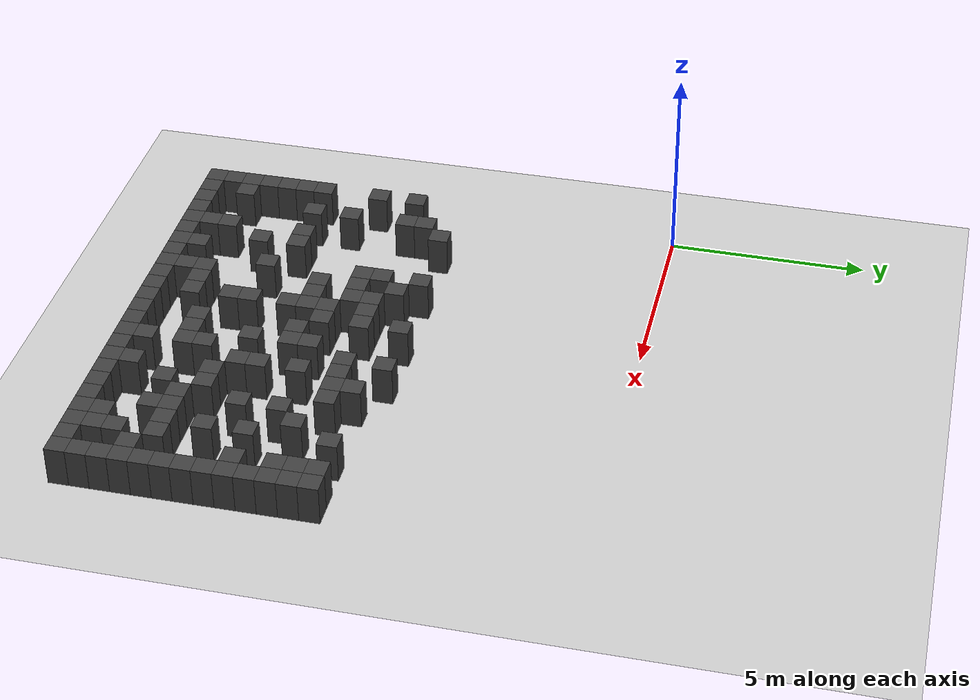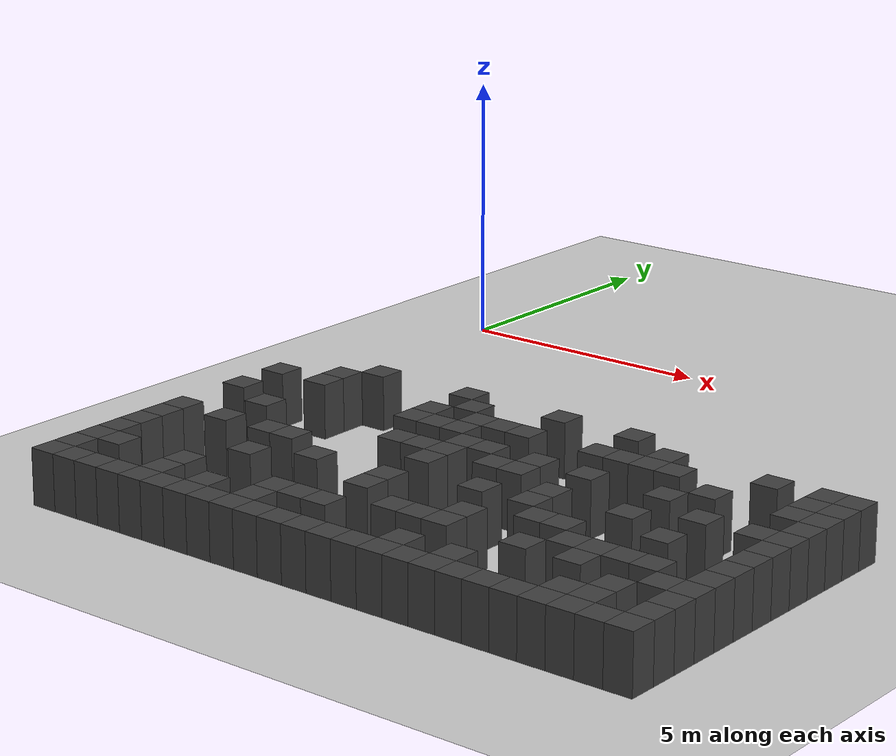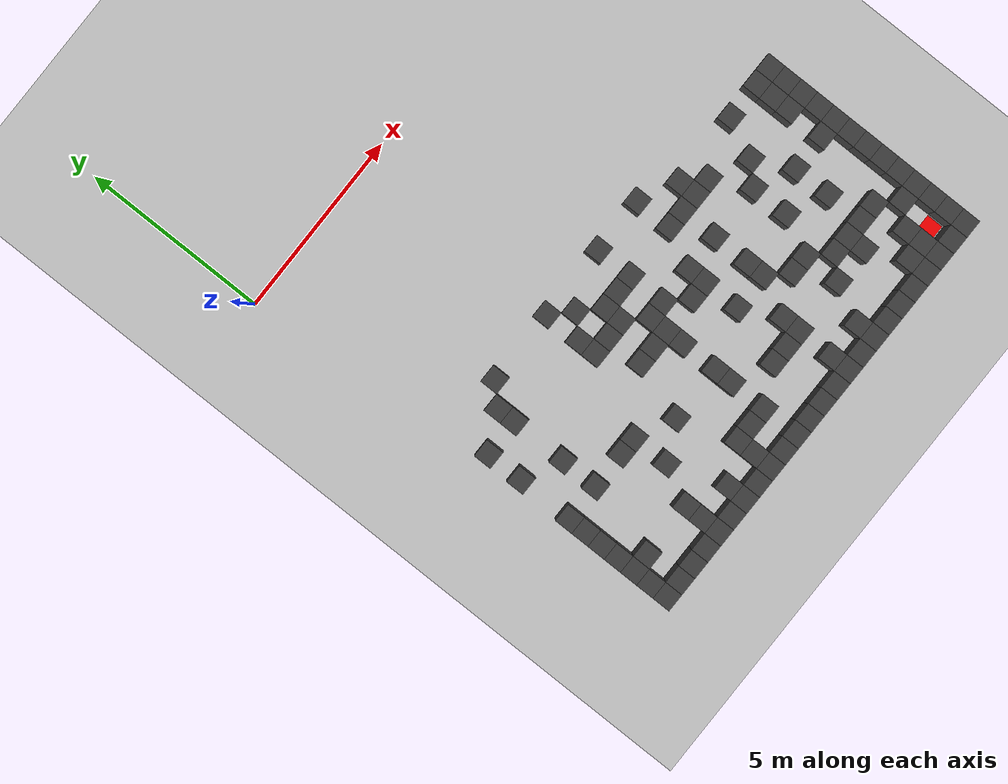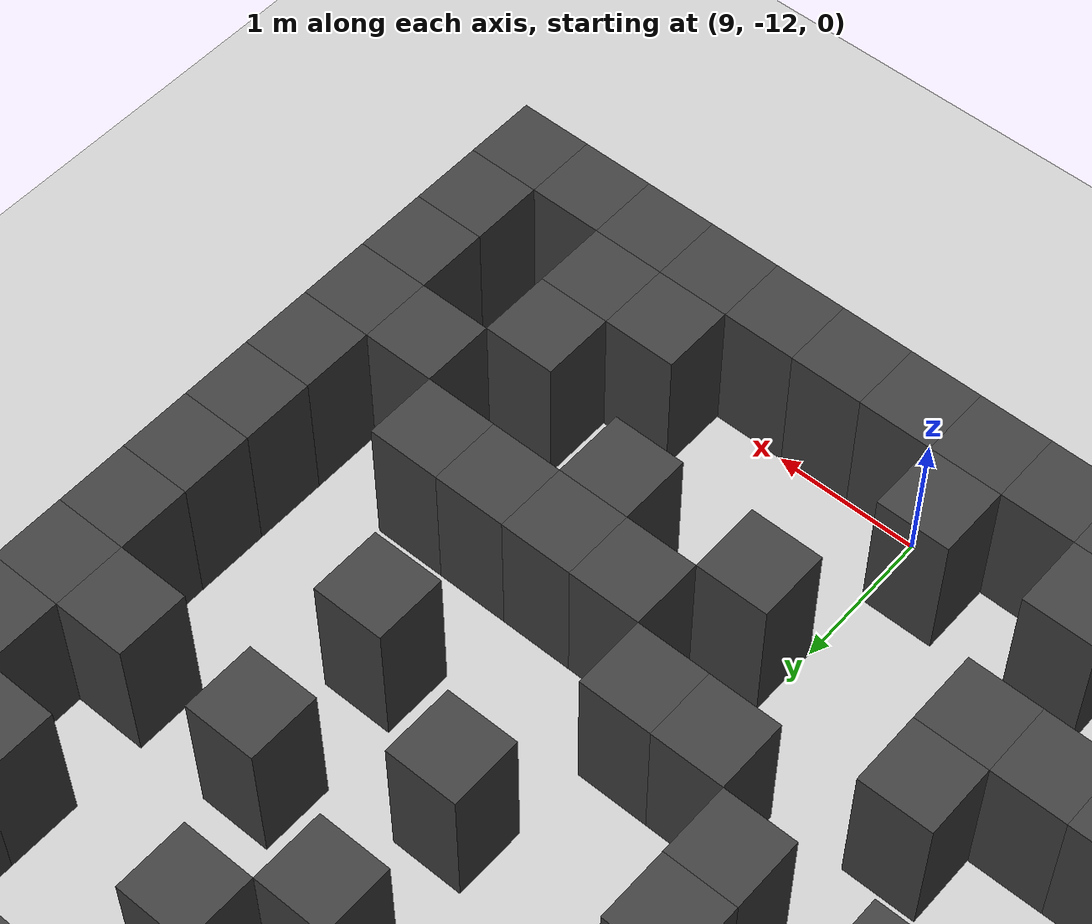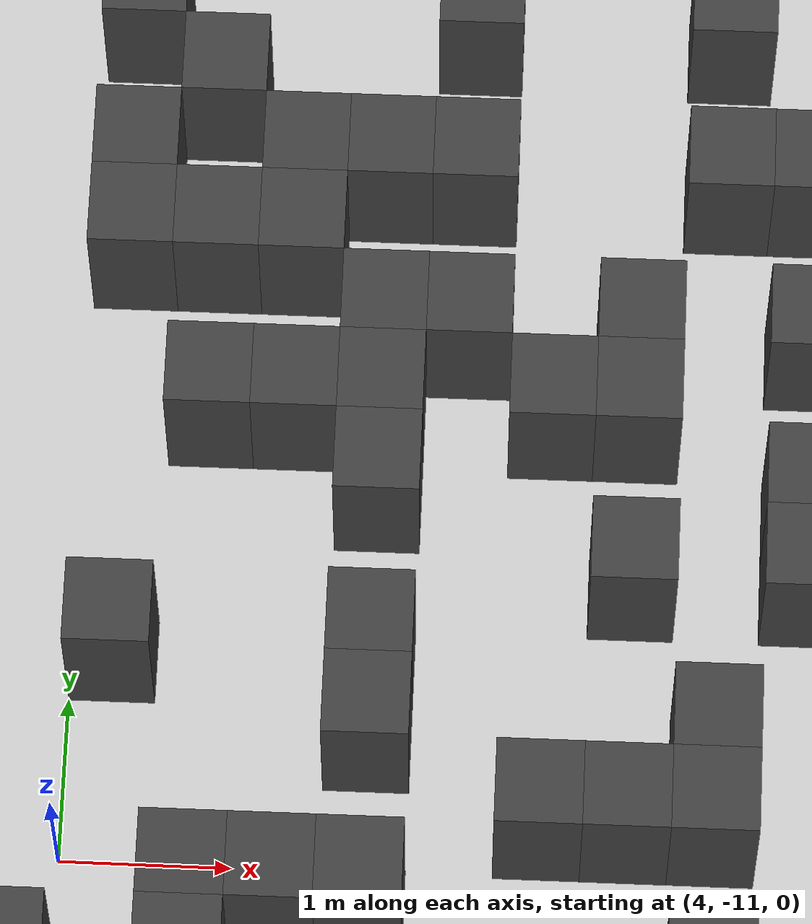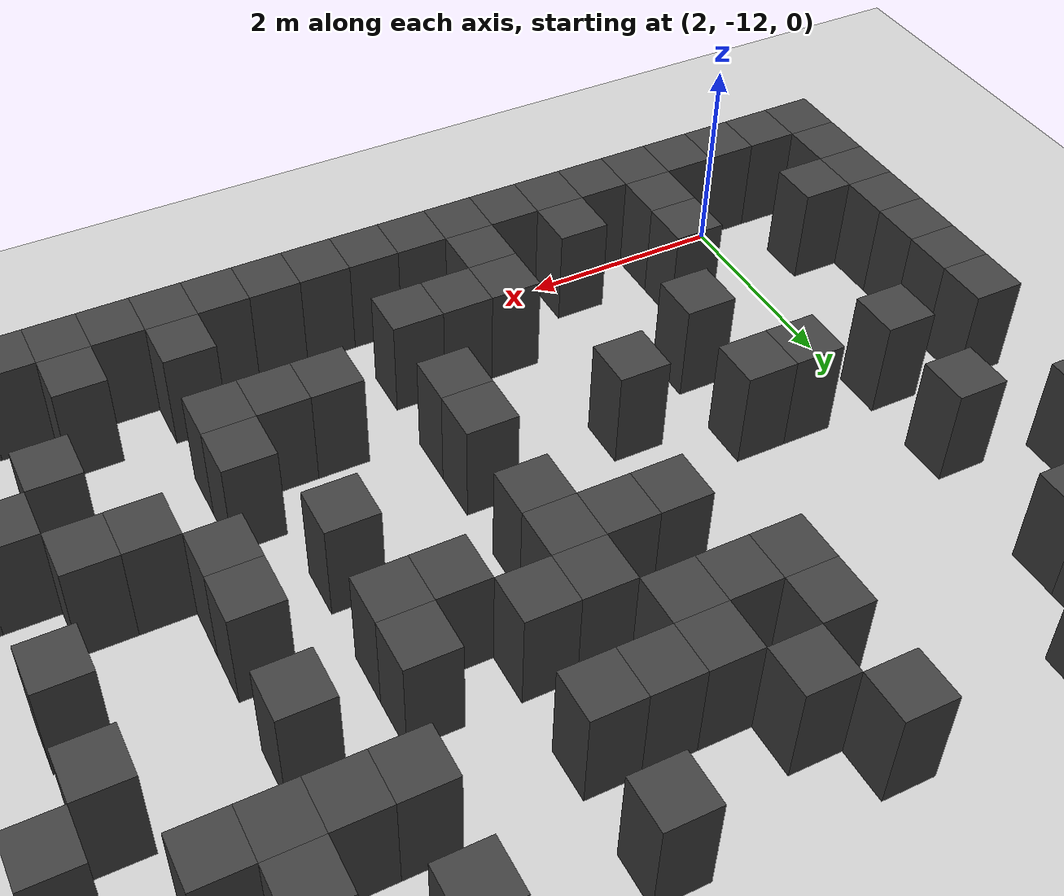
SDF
<sdf version="1.7">
 <world name="map_4818">
  <model name="ground_plane">
   <static>true</static>
   <link name="link">
    <collision name="collision">
     <geometry><plane><normal>0 0 1</normal><size>200 200</size></plane></geometry>
    </collision>
    <visual name="visual">
     <geometry><plane><normal>0 0 1</normal><size>200 200</size></plane></geometry>
     <material><ambient>0.8 0.8 0.8 1</ambient><diffuse>0.8 0.8 0.8 1</diffuse></material>
    </visual>
   </link>
  </model>
  <model name="maze_environment">
   <static>true</static>
   <link name="wall_503">
    <pose>2.250 -5.750 0.500 0 0 0</pose>
    <collision name="col"><geometry><box><size>0.5 0.5 1.0</size></box></geometry></collision>
    <visual name="vis">
     <geometry><box><size>0.5 0.5 1.0</size></box></geometry>
     <material><ambient>0.15 0.15 0.15 1</ambient><diffuse>0.25 0.25 0.25 1</diffuse></material>
    </visual>
   </link>
   <link name="wall_504">
    <pose>4.250 -5.750 0.500 0 0 0</pose>
    <collision name="col"><geometry><box><size>0.5 0.5 1.0</size></box></geometry></collision>
    <visual name="vis">
     <geometry><box><size>0.5 0.5 1.0</size></box></geometry>
     <material><ambient>0.15 0.15 0.15 1</ambient><diffuse>0.25 0.25 0.25 1</diffuse></material>
    </visual>
   </link>
   <link name="wall_505">
    <pose>6.250 -5.750 0.500 0 0 0</pose>
    <collision name="col"><geometry><box><size>0.5 0.5 1.0</size></box></geometry></collision>
    <visual name="vis">
     <geometry><box><size>0.5 0.5 1.0</size></box></geometry>
     <material><ambient>0.15 0.15 0.15 1</ambient><diffuse>0.25 0.25 0.25 1</diffuse></material>
    </visual>
   </link>
   <link name="wall_506">
    <pose>7.750 -5.750 0.500 0 0 0</pose>
    <collision name="col"><geometry><box><size>0.5 0.5 1.0</size></box></geometry></collision>
    <visual name="vis">
     <geometry><box><size>0.5 0.5 1.0</size></box></geometry>
     <material><ambient>0.15 0.15 0.15 1</ambient><diffuse>0.25 0.25 0.25 1</diffuse></material>
    </visual>
   </link>
   <link name="wall_514">
    <pose>1.750 -6.250 0.500 0 0 0</pose>
    <collision name="col"><geometry><box><size>0.5 0.5 1.0</size></box></geometry></collision>
    <visual name="vis">
     <geometry><box><size>0.5 0.5 1.0</size></box></geometry>
     <material><ambient>0.15 0.15 0.15 1</ambient><diffuse>0.25 0.25 0.25 1</diffuse></material>
    </visual>
   </link>
   <link name="wall_515">
    <pose>4.750 -6.250 0.500 0 0 0</pose>
    <collision name="col"><geometry><box><size>0.5 0.5 1.0</size></box></geometry></collision>
    <visual name="vis">
     <geometry><box><size>0.5 0.5 1.0</size></box></geometry>
     <material><ambient>0.15 0.15 0.15 1</ambient><diffuse>0.25 0.25 0.25 1</diffuse></material>
    </visual>
   </link>
   <link name="wall_516">
    <pose>8.750 -6.250 0.500 0 0 0</pose>
    <collision name="col"><geometry><box><size>0.5 0.5 1.0</size></box></geometry></collision>
    <visual name="vis">
     <geometry><box><size>0.5 0.5 1.0</size></box></geometry>
     <material><ambient>0.15 0.15 0.15 1</ambient><diffuse>0.25 0.25 0.25 1</diffuse></material>
    </visual>
   </link>
   <link name="wall_517">
    <pose>10.750 -6.250 0.500 0 0 0</pose>
    <collision name="col"><geometry><box><size>0.5 0.5 1.0</size></box></geometry></collision>
    <visual name="vis">
     <geometry><box><size>0.5 0.5 1.0</size></box></geometry>
     <material><ambient>0.15 0.15 0.15 1</ambient><diffuse>0.25 0.25 0.25 1</diffuse></material>
    </visual>
   </link>
   <link name="wall_518">
    <pose>11.750 -6.250 0.500 0 0 0</pose>
    <collision name="col"><geometry><box><size>0.5 0.5 1.0</size></box></geometry></collision>
    <visual name="vis">
     <geometry><box><size>0.5 0.5 1.0</size></box></geometry>
     <material><ambient>0.15 0.15 0.15 1</ambient><diffuse>0.25 0.25 0.25 1</diffuse></material>
    </visual>
   </link>
   <link name="wall_519">
    <pose>12.250 -6.250 0.500 0 0 0</pose>
    <collision name="col"><geometry><box><size>0.5 0.5 1.0</size></box></geometry></collision>
    <visual name="vis">
     <geometry><box><size>0.5 0.5 1.0</size></box></geometry>
     <material><ambient>0.15 0.15 0.15 1</ambient><diffuse>0.25 0.25 0.25 1</diffuse></material>
    </visual>
   </link>
   <link name="wall_526">
    <pose>0.750 -6.750 0.500 0 0 0</pose>
    <collision name="col"><geometry><box><size>0.5 0.5 1.0</size></box></geometry></collision>
    <visual name="vis">
     <geometry><box><size>0.5 0.5 1.0</size></box></geometry>
     <material><ambient>0.15 0.15 0.15 1</ambient><diffuse>0.25 0.25 0.25 1</diffuse></material>
    </visual>
   </link>
   <link name="wall_527">
    <pose>1.750 -6.750 0.500 0 0 0</pose>
    <collision name="col"><geometry><box><size>0.5 0.5 1.0</size></box></geometry></collision>
    <visual name="vis">
     <geometry><box><size>0.5 0.5 1.0</size></box></geometry>
     <material><ambient>0.15 0.15 0.15 1</ambient><diffuse>0.25 0.25 0.25 1</diffuse></material>
    </visual>
   </link>
   <link name="wall_528">
    <pose>4.250 -6.750 0.500 0 0 0</pose>
    <collision name="col"><geometry><box><size>0.5 0.5 1.0</size></box></geometry></collision>
    <visual name="vis">
     <geometry><box><size>0.5 0.5 1.0</size></box></geometry>
     <material><ambient>0.15 0.15 0.15 1</ambient><diffuse>0.25 0.25 0.25 1</diffuse></material>
    </visual>
   </link>
   <link name="wall_529">
    <pose>5.250 -6.750 0.500 0 0 0</pose>
    <collision name="col"><geometry><box><size>0.5 0.5 1.0</size></box></geometry></collision>
    <visual name="vis">
     <geometry><box><size>0.5 0.5 1.0</size></box></geometry>
     <material><ambient>0.15 0.15 0.15 1</ambient><diffuse>0.25 0.25 0.25 1</diffuse></material>
    </visual>
   </link>
   <link name="wall_530">
    <pose>5.750 -6.750 0.500 0 0 0</pose>
    <collision name="col"><geometry><box><size>0.5 0.5 1.0</size></box></geometry></collision>
    <visual name="vis">
     <geometry><box><size>0.5 0.5 1.0</size></box></geometry>
     <material><ambient>0.15 0.15 0.15 1</ambient><diffuse>0.25 0.25 0.25 1</diffuse></material>
    </visual>
   </link>
   <link name="wall_531">
    <pose>6.250 -6.750 0.500 0 0 0</pose>
    <collision name="col"><geometry><box><size>0.5 0.5 1.0</size></box></geometry></collision>
    <visual name="vis">
     <geometry><box><size>0.5 0.5 1.0</size></box></geometry>
     <material><ambient>0.15 0.15 0.15 1</ambient><diffuse>0.25 0.25 0.25 1</diffuse></material>
    </visual>
   </link>
   <link name="wall_532">
    <pose>7.750 -6.750 0.500 0 0 0</pose>
    <collision name="col"><geometry><box><size>0.5 0.5 1.0</size></box></geometry></collision>
    <visual name="vis">
     <geometry><box><size>0.5 0.5 1.0</size></box></geometry>
     <material><ambient>0.15 0.15 0.15 1</ambient><diffuse>0.25 0.25 0.25 1</diffuse></material>
    </visual>
   </link>
   <link name="wall_533">
    <pose>8.250 -6.750 0.500 0 0 0</pose>
    <collision name="col"><geometry><box><size>0.5 0.5 1.0</size></box></geometry></collision>
    <visual name="vis">
     <geometry><box><size>0.5 0.5 1.0</size></box></geometry>
     <material><ambient>0.15 0.15 0.15 1</ambient><diffuse>0.25 0.25 0.25 1</diffuse></material>
    </visual>
   </link>
   <link name="wall_534">
    <pose>8.750 -6.750 0.500 0 0 0</pose>
    <collision name="col"><geometry><box><size>0.5 0.5 1.0</size></box></geometry></collision>
    <visual name="vis">
     <geometry><box><size>0.5 0.5 1.0</size></box></geometry>
     <material><ambient>0.15 0.15 0.15 1</ambient><diffuse>0.25 0.25 0.25 1</diffuse></material>
    </visual>
   </link>
   <link name="wall_535">
    <pose>9.250 -6.750 0.500 0 0 0</pose>
    <collision name="col"><geometry><box><size>0.5 0.5 1.0</size></box></geometry></collision>
    <visual name="vis">
     <geometry><box><size>0.5 0.5 1.0</size></box></geometry>
     <material><ambient>0.15 0.15 0.15 1</ambient><diffuse>0.25 0.25 0.25 1</diffuse></material>
    </visual>
   </link>
   <link name="wall_536">
    <pose>11.750 -6.750 0.500 0 0 0</pose>
    <collision name="col"><geometry><box><size>0.5 0.5 1.0</size></box></geometry></collision>
    <visual name="vis">
     <geometry><box><size>0.5 0.5 1.0</size></box></geometry>
     <material><ambient>0.15 0.15 0.15 1</ambient><diffuse>0.25 0.25 0.25 1</diffuse></material>
    </visual>
   </link>
   <link name="wall_537">
    <pose>12.250 -6.750 0.500 0 0 0</pose>
    <collision name="col"><geometry><box><size>0.5 0.5 1.0</size></box></geometry></collision>
    <visual name="vis">
     <geometry><box><size>0.5 0.5 1.0</size></box></geometry>
     <material><ambient>0.15 0.15 0.15 1</ambient><diffuse>0.25 0.25 0.25 1</diffuse></material>
    </visual>
   </link>
   <link name="wall_542">
    <pose>4.250 -7.250 0.500 0 0 0</pose>
    <collision name="col"><geometry><box><size>0.5 0.5 1.0</size></box></geometry></collision>
    <visual name="vis">
     <geometry><box><size>0.5 0.5 1.0</size></box></geometry>
     <material><ambient>0.15 0.15 0.15 1</ambient><diffuse>0.25 0.25 0.25 1</diffuse></material>
    </visual>
   </link>
   <link name="wall_543">
    <pose>4.750 -7.250 0.500 0 0 0</pose>
    <collision name="col"><geometry><box><size>0.5 0.5 1.0</size></box></geometry></collision>
    <visual name="vis">
     <geometry><box><size>0.5 0.5 1.0</size></box></geometry>
     <material><ambient>0.15 0.15 0.15 1</ambient><diffuse>0.25 0.25 0.25 1</diffuse></material>
    </visual>
   </link>
   <link name="wall_544">
    <pose>5.250 -7.250 0.500 0 0 0</pose>
    <collision name="col"><geometry><box><size>0.5 0.5 1.0</size></box></geometry></collision>
    <visual name="vis">
     <geometry><box><size>0.5 0.5 1.0</size></box></geometry>
     <material><ambient>0.15 0.15 0.15 1</ambient><diffuse>0.25 0.25 0.25 1</diffuse></material>
    </visual>
   </link>
   <link name="wall_545">
    <pose>10.250 -7.250 0.500 0 0 0</pose>
    <collision name="col"><geometry><box><size>0.5 0.5 1.0</size></box></geometry></collision>
    <visual name="vis">
     <geometry><box><size>0.5 0.5 1.0</size></box></geometry>
     <material><ambient>0.15 0.15 0.15 1</ambient><diffuse>0.25 0.25 0.25 1</diffuse></material>
    </visual>
   </link>
   <link name="wall_546">
    <pose>11.750 -7.250 0.500 0 0 0</pose>
    <collision name="col"><geometry><box><size>0.5 0.5 1.0</size></box></geometry></collision>
    <visual name="vis">
     <geometry><box><size>0.5 0.5 1.0</size></box></geometry>
     <material><ambient>0.15 0.15 0.15 1</ambient><diffuse>0.25 0.25 0.25 1</diffuse></material>
    </visual>
   </link>
   <link name="wall_547">
    <pose>12.250 -7.250 0.500 0 0 0</pose>
    <collision name="col"><geometry><box><size>0.5 0.5 1.0</size></box></geometry></collision>
    <visual name="vis">
     <geometry><box><size>0.5 0.5 1.0</size></box></geometry>
     <material><ambient>0.15 0.15 0.15 1</ambient><diffuse>0.25 0.25 0.25 1</diffuse></material>
    </visual>
   </link>
   <link name="wall_558">
    <pose>0.750 -7.750 0.500 0 0 0</pose>
    <collision name="col"><geometry><box><size>0.5 0.5 1.0</size></box></geometry></collision>
    <visual name="vis">
     <geometry><box><size>0.5 0.5 1.0</size></box></geometry>
     <material><ambient>0.15 0.15 0.15 1</ambient><diffuse>0.25 0.25 0.25 1</diffuse></material>
    </visual>
   </link>
   <link name="wall_559">
    <pose>5.750 -7.750 0.500 0 0 0</pose>
    <collision name="col"><geometry><box><size>0.5 0.5 1.0</size></box></geometry></collision>
    <visual name="vis">
     <geometry><box><size>0.5 0.5 1.0</size></box></geometry>
     <material><ambient>0.15 0.15 0.15 1</ambient><diffuse>0.25 0.25 0.25 1</diffuse></material>
    </visual>
   </link>
   <link name="wall_560">
    <pose>6.250 -7.750 0.500 0 0 0</pose>
    <collision name="col"><geometry><box><size>0.5 0.5 1.0</size></box></geometry></collision>
    <visual name="vis">
     <geometry><box><size>0.5 0.5 1.0</size></box></geometry>
     <material><ambient>0.15 0.15 0.15 1</ambient><diffuse>0.25 0.25 0.25 1</diffuse></material>
    </visual>
   </link>
   <link name="wall_561">
    <pose>7.250 -7.750 0.500 0 0 0</pose>
    <collision name="col"><geometry><box><size>0.5 0.5 1.0</size></box></geometry></collision>
    <visual name="vis">
     <geometry><box><size>0.5 0.5 1.0</size></box></geometry>
     <material><ambient>0.15 0.15 0.15 1</ambient><diffuse>0.25 0.25 0.25 1</diffuse></material>
    </visual>
   </link>
   <link name="wall_562">
    <pose>8.250 -7.750 0.500 0 0 0</pose>
    <collision name="col"><geometry><box><size>0.5 0.5 1.0</size></box></geometry></collision>
    <visual name="vis">
     <geometry><box><size>0.5 0.5 1.0</size></box></geometry>
     <material><ambient>0.15 0.15 0.15 1</ambient><diffuse>0.25 0.25 0.25 1</diffuse></material>
    </visual>
   </link>
   <link name="wall_563">
    <pose>9.750 -7.750 0.500 0 0 0</pose>
    <collision name="col"><geometry><box><size>0.5 0.5 1.0</size></box></geometry></collision>
    <visual name="vis">
     <geometry><box><size>0.5 0.5 1.0</size></box></geometry>
     <material><ambient>0.15 0.15 0.15 1</ambient><diffuse>0.25 0.25 0.25 1</diffuse></material>
    </visual>
   </link>
   <link name="wall_564">
    <pose>12.250 -7.750 0.500 0 0 0</pose>
    <collision name="col"><geometry><box><size>0.5 0.5 1.0</size></box></geometry></collision>
    <visual name="vis">
     <geometry><box><size>0.5 0.5 1.0</size></box></geometry>
     <material><ambient>0.15 0.15 0.15 1</ambient><diffuse>0.25 0.25 0.25 1</diffuse></material>
    </visual>
   </link>
   <link name="wall_570">
    <pose>1.750 -8.250 0.500 0 0 0</pose>
    <collision name="col"><geometry><box><size>0.5 0.5 1.0</size></box></geometry></collision>
    <visual name="vis">
     <geometry><box><size>0.5 0.5 1.0</size></box></geometry>
     <material><ambient>0.15 0.15 0.15 1</ambient><diffuse>0.25 0.25 0.25 1</diffuse></material>
    </visual>
   </link>
   <link name="wall_571">
    <pose>4.750 -8.250 0.500 0 0 0</pose>
    <collision name="col"><geometry><box><size>0.5 0.5 1.0</size></box></geometry></collision>
    <visual name="vis">
     <geometry><box><size>0.5 0.5 1.0</size></box></geometry>
     <material><ambient>0.15 0.15 0.15 1</ambient><diffuse>0.25 0.25 0.25 1</diffuse></material>
    </visual>
   </link>
   <link name="wall_572">
    <pose>5.250 -8.250 0.500 0 0 0</pose>
    <collision name="col"><geometry><box><size>0.5 0.5 1.0</size></box></geometry></collision>
    <visual name="vis">
     <geometry><box><size>0.5 0.5 1.0</size></box></geometry>
     <material><ambient>0.15 0.15 0.15 1</ambient><diffuse>0.25 0.25 0.25 1</diffuse></material>
    </visual>
   </link>
   <link name="wall_573">
    <pose>5.750 -8.250 0.500 0 0 0</pose>
    <collision name="col"><geometry><box><size>0.5 0.5 1.0</size></box></geometry></collision>
    <visual name="vis">
     <geometry><box><size>0.5 0.5 1.0</size></box></geometry>
     <material><ambient>0.15 0.15 0.15 1</ambient><diffuse>0.25 0.25 0.25 1</diffuse></material>
    </visual>
   </link>
   <link name="wall_574">
    <pose>6.750 -8.250 0.500 0 0 0</pose>
    <collision name="col"><geometry><box><size>0.5 0.5 1.0</size></box></geometry></collision>
    <visual name="vis">
     <geometry><box><size>0.5 0.5 1.0</size></box></geometry>
     <material><ambient>0.15 0.15 0.15 1</ambient><diffuse>0.25 0.25 0.25 1</diffuse></material>
    </visual>
   </link>
   <link name="wall_575">
    <pose>7.250 -8.250 0.500 0 0 0</pose>
    <collision name="col"><geometry><box><size>0.5 0.5 1.0</size></box></geometry></collision>
    <visual name="vis">
     <geometry><box><size>0.5 0.5 1.0</size></box></geometry>
     <material><ambient>0.15 0.15 0.15 1</ambient><diffuse>0.25 0.25 0.25 1</diffuse></material>
    </visual>
   </link>
   <link name="wall_576">
    <pose>10.750 -8.250 0.500 0 0 0</pose>
    <collision name="col"><geometry><box><size>0.5 0.5 1.0</size></box></geometry></collision>
    <visual name="vis">
     <geometry><box><size>0.5 0.5 1.0</size></box></geometry>
     <material><ambient>0.15 0.15 0.15 1</ambient><diffuse>0.25 0.25 0.25 1</diffuse></material>
    </visual>
   </link>
   <link name="wall_577">
    <pose>11.750 -8.250 0.500 0 0 0</pose>
    <collision name="col"><geometry><box><size>0.5 0.5 1.0</size></box></geometry></collision>
    <visual name="vis">
     <geometry><box><size>0.5 0.5 1.0</size></box></geometry>
     <material><ambient>0.15 0.15 0.15 1</ambient><diffuse>0.25 0.25 0.25 1</diffuse></material>
    </visual>
   </link>
   <link name="wall_578">
    <pose>12.250 -8.250 0.500 0 0 0</pose>
    <collision name="col"><geometry><box><size>0.5 0.5 1.0</size></box></geometry></collision>
    <visual name="vis">
     <geometry><box><size>0.5 0.5 1.0</size></box></geometry>
     <material><ambient>0.15 0.15 0.15 1</ambient><diffuse>0.25 0.25 0.25 1</diffuse></material>
    </visual>
   </link>
   <link name="wall_582">
    <pose>5.750 -8.750 0.500 0 0 0</pose>
    <collision name="col"><geometry><box><size>0.5 0.5 1.0</size></box></geometry></collision>
    <visual name="vis">
     <geometry><box><size>0.5 0.5 1.0</size></box></geometry>
     <material><ambient>0.15 0.15 0.15 1</ambient><diffuse>0.25 0.25 0.25 1</diffuse></material>
    </visual>
   </link>
   <link name="wall_583">
    <pose>8.250 -8.750 0.500 0 0 0</pose>
    <collision name="col"><geometry><box><size>0.5 0.5 1.0</size></box></geometry></collision>
    <visual name="vis">
     <geometry><box><size>0.5 0.5 1.0</size></box></geometry>
     <material><ambient>0.15 0.15 0.15 1</ambient><diffuse>0.25 0.25 0.25 1</diffuse></material>
    </visual>
   </link>
   <link name="wall_584">
    <pose>9.750 -8.750 0.500 0 0 0</pose>
    <collision name="col"><geometry><box><size>0.5 0.5 1.0</size></box></geometry></collision>
    <visual name="vis">
     <geometry><box><size>0.5 0.5 1.0</size></box></geometry>
     <material><ambient>0.15 0.15 0.15 1</ambient><diffuse>0.25 0.25 0.25 1</diffuse></material>
    </visual>
   </link>
   <link name="wall_585">
    <pose>12.250 -8.750 0.500 0 0 0</pose>
    <collision name="col"><geometry><box><size>0.5 0.5 1.0</size></box></geometry></collision>
    <visual name="vis">
     <geometry><box><size>0.5 0.5 1.0</size></box></geometry>
     <material><ambient>0.15 0.15 0.15 1</ambient><diffuse>0.25 0.25 0.25 1</diffuse></material>
    </visual>
   </link>
   <link name="wall_593">
    <pose>0.750 -9.250 0.500 0 0 0</pose>
    <collision name="col"><geometry><box><size>0.5 0.5 1.0</size></box></geometry></collision>
    <visual name="vis">
     <geometry><box><size>0.5 0.5 1.0</size></box></geometry>
     <material><ambient>0.15 0.15 0.15 1</ambient><diffuse>0.25 0.25 0.25 1</diffuse></material>
    </visual>
   </link>
   <link name="wall_594">
    <pose>1.750 -9.250 0.500 0 0 0</pose>
    <collision name="col"><geometry><box><size>0.5 0.5 1.0</size></box></geometry></collision>
    <visual name="vis">
     <geometry><box><size>0.5 0.5 1.0</size></box></geometry>
     <material><ambient>0.15 0.15 0.15 1</ambient><diffuse>0.25 0.25 0.25 1</diffuse></material>
    </visual>
   </link>
   <link name="wall_595">
    <pose>2.750 -9.250 0.500 0 0 0</pose>
    <collision name="col"><geometry><box><size>0.5 0.5 1.0</size></box></geometry></collision>
    <visual name="vis">
     <geometry><box><size>0.5 0.5 1.0</size></box></geometry>
     <material><ambient>0.15 0.15 0.15 1</ambient><diffuse>0.25 0.25 0.25 1</diffuse></material>
    </visual>
   </link>
   <link name="wall_596">
    <pose>3.250 -9.250 0.500 0 0 0</pose>
    <collision name="col"><geometry><box><size>0.5 0.5 1.0</size></box></geometry></collision>
    <visual name="vis">
     <geometry><box><size>0.5 0.5 1.0</size></box></geometry>
     <material><ambient>0.15 0.15 0.15 1</ambient><diffuse>0.25 0.25 0.25 1</diffuse></material>
    </visual>
   </link>
   <link name="wall_597">
    <pose>7.250 -9.250 0.500 0 0 0</pose>
    <collision name="col"><geometry><box><size>0.5 0.5 1.0</size></box></geometry></collision>
    <visual name="vis">
     <geometry><box><size>0.5 0.5 1.0</size></box></geometry>
     <material><ambient>0.15 0.15 0.15 1</ambient><diffuse>0.25 0.25 0.25 1</diffuse></material>
    </visual>
   </link>
   <link name="wall_598">
    <pose>8.250 -9.250 0.500 0 0 0</pose>
    <collision name="col"><geometry><box><size>0.5 0.5 1.0</size></box></geometry></collision>
    <visual name="vis">
     <geometry><box><size>0.5 0.5 1.0</size></box></geometry>
     <material><ambient>0.15 0.15 0.15 1</ambient><diffuse>0.25 0.25 0.25 1</diffuse></material>
    </visual>
   </link>
   <link name="wall_599">
    <pose>10.750 -9.250 0.500 0 0 0</pose>
    <collision name="col"><geometry><box><size>0.5 0.5 1.0</size></box></geometry></collision>
    <visual name="vis">
     <geometry><box><size>0.5 0.5 1.0</size></box></geometry>
     <material><ambient>0.15 0.15 0.15 1</ambient><diffuse>0.25 0.25 0.25 1</diffuse></material>
    </visual>
   </link>
   <link name="wall_600">
    <pose>12.250 -9.250 0.500 0 0 0</pose>
    <collision name="col"><geometry><box><size>0.5 0.5 1.0</size></box></geometry></collision>
    <visual name="vis">
     <geometry><box><size>0.5 0.5 1.0</size></box></geometry>
     <material><ambient>0.15 0.15 0.15 1</ambient><diffuse>0.25 0.25 0.25 1</diffuse></material>
    </visual>
   </link>
   <link name="wall_606">
    <pose>0.750 -9.750 0.500 0 0 0</pose>
    <collision name="col"><geometry><box><size>0.5 0.5 1.0</size></box></geometry></collision>
    <visual name="vis">
     <geometry><box><size>0.5 0.5 1.0</size></box></geometry>
     <material><ambient>0.15 0.15 0.15 1</ambient><diffuse>0.25 0.25 0.25 1</diffuse></material>
    </visual>
   </link>
   <link name="wall_607">
    <pose>4.250 -9.750 0.500 0 0 0</pose>
    <collision name="col"><geometry><box><size>0.5 0.5 1.0</size></box></geometry></collision>
    <visual name="vis">
     <geometry><box><size>0.5 0.5 1.0</size></box></geometry>
     <material><ambient>0.15 0.15 0.15 1</ambient><diffuse>0.25 0.25 0.25 1</diffuse></material>
    </visual>
   </link>
   <link name="wall_608">
    <pose>5.750 -9.750 0.500 0 0 0</pose>
    <collision name="col"><geometry><box><size>0.5 0.5 1.0</size></box></geometry></collision>
    <visual name="vis">
     <geometry><box><size>0.5 0.5 1.0</size></box></geometry>
     <material><ambient>0.15 0.15 0.15 1</ambient><diffuse>0.25 0.25 0.25 1</diffuse></material>
    </visual>
   </link>
   <link name="wall_609">
    <pose>8.750 -9.750 0.500 0 0 0</pose>
    <collision name="col"><geometry><box><size>0.5 0.5 1.0</size></box></geometry></collision>
    <visual name="vis">
     <geometry><box><size>0.5 0.5 1.0</size></box></geometry>
     <material><ambient>0.15 0.15 0.15 1</ambient><diffuse>0.25 0.25 0.25 1</diffuse></material>
    </visual>
   </link>
   <link name="wall_610">
    <pose>9.250 -9.750 0.500 0 0 0</pose>
    <collision name="col"><geometry><box><size>0.5 0.5 1.0</size></box></geometry></collision>
    <visual name="vis">
     <geometry><box><size>0.5 0.5 1.0</size></box></geometry>
     <material><ambient>0.15 0.15 0.15 1</ambient><diffuse>0.25 0.25 0.25 1</diffuse></material>
    </visual>
   </link>
   <link name="wall_611">
    <pose>12.250 -9.750 0.500 0 0 0</pose>
    <collision name="col"><geometry><box><size>0.5 0.5 1.0</size></box></geometry></collision>
    <visual name="vis">
     <geometry><box><size>0.5 0.5 1.0</size></box></geometry>
     <material><ambient>0.15 0.15 0.15 1</ambient><diffuse>0.25 0.25 0.25 1</diffuse></material>
    </visual>
   </link>
   <link name="wall_623">
    <pose>0.750 -10.250 0.500 0 0 0</pose>
    <collision name="col"><geometry><box><size>0.5 0.5 1.0</size></box></geometry></collision>
    <visual name="vis">
     <geometry><box><size>0.5 0.5 1.0</size></box></geometry>
     <material><ambient>0.15 0.15 0.15 1</ambient><diffuse>0.25 0.25 0.25 1</diffuse></material>
    </visual>
   </link>
   <link name="wall_624">
    <pose>3.250 -10.250 0.500 0 0 0</pose>
    <collision name="col"><geometry><box><size>0.5 0.5 1.0</size></box></geometry></collision>
    <visual name="vis">
     <geometry><box><size>0.5 0.5 1.0</size></box></geometry>
     <material><ambient>0.15 0.15 0.15 1</ambient><diffuse>0.25 0.25 0.25 1</diffuse></material>
    </visual>
   </link>
   <link name="wall_625">
    <pose>5.750 -10.250 0.500 0 0 0</pose>
    <collision name="col"><geometry><box><size>0.5 0.5 1.0</size></box></geometry></collision>
    <visual name="vis">
     <geometry><box><size>0.5 0.5 1.0</size></box></geometry>
     <material><ambient>0.15 0.15 0.15 1</ambient><diffuse>0.25 0.25 0.25 1</diffuse></material>
    </visual>
   </link>
   <link name="wall_626">
    <pose>7.750 -10.250 0.500 0 0 0</pose>
    <collision name="col"><geometry><box><size>0.5 0.5 1.0</size></box></geometry></collision>
    <visual name="vis">
     <geometry><box><size>0.5 0.5 1.0</size></box></geometry>
     <material><ambient>0.15 0.15 0.15 1</ambient><diffuse>0.25 0.25 0.25 1</diffuse></material>
    </visual>
   </link>
   <link name="wall_627">
    <pose>9.750 -10.250 0.500 0 0 0</pose>
    <collision name="col"><geometry><box><size>0.5 0.5 1.0</size></box></geometry></collision>
    <visual name="vis">
     <geometry><box><size>0.5 0.5 1.0</size></box></geometry>
     <material><ambient>0.15 0.15 0.15 1</ambient><diffuse>0.25 0.25 0.25 1</diffuse></material>
    </visual>
   </link>
   <link name="wall_628">
    <pose>10.250 -10.250 0.500 0 0 0</pose>
    <collision name="col"><geometry><box><size>0.5 0.5 1.0</size></box></geometry></collision>
    <visual name="vis">
     <geometry><box><size>0.5 0.5 1.0</size></box></geometry>
     <material><ambient>0.15 0.15 0.15 1</ambient><diffuse>0.25 0.25 0.25 1</diffuse></material>
    </visual>
   </link>
   <link name="wall_629">
    <pose>10.750 -10.250 0.500 0 0 0</pose>
    <collision name="col"><geometry><box><size>0.5 0.5 1.0</size></box></geometry></collision>
    <visual name="vis">
     <geometry><box><size>0.5 0.5 1.0</size></box></geometry>
     <material><ambient>0.15 0.15 0.15 1</ambient><diffuse>0.25 0.25 0.25 1</diffuse></material>
    </visual>
   </link>
   <link name="wall_630">
    <pose>11.250 -10.250 0.500 0 0 0</pose>
    <collision name="col"><geometry><box><size>0.5 0.5 1.0</size></box></geometry></collision>
    <visual name="vis">
     <geometry><box><size>0.5 0.5 1.0</size></box></geometry>
     <material><ambient>0.15 0.15 0.15 1</ambient><diffuse>0.25 0.25 0.25 1</diffuse></material>
    </visual>
   </link>
   <link name="wall_631">
    <pose>12.250 -10.250 0.500 0 0 0</pose>
    <collision name="col"><geometry><box><size>0.5 0.5 1.0</size></box></geometry></collision>
    <visual name="vis">
     <geometry><box><size>0.5 0.5 1.0</size></box></geometry>
     <material><ambient>0.15 0.15 0.15 1</ambient><diffuse>0.25 0.25 0.25 1</diffuse></material>
    </visual>
   </link>
   <link name="wall_638">
    <pose>0.750 -10.750 0.500 0 0 0</pose>
    <collision name="col"><geometry><box><size>0.5 0.5 1.0</size></box></geometry></collision>
    <visual name="vis">
     <geometry><box><size>0.5 0.5 1.0</size></box></geometry>
     <material><ambient>0.15 0.15 0.15 1</ambient><diffuse>0.25 0.25 0.25 1</diffuse></material>
    </visual>
   </link>
   <link name="wall_639">
    <pose>6.750 -10.750 0.500 0 0 0</pose>
    <collision name="col"><geometry><box><size>0.5 0.5 1.0</size></box></geometry></collision>
    <visual name="vis">
     <geometry><box><size>0.5 0.5 1.0</size></box></geometry>
     <material><ambient>0.15 0.15 0.15 1</ambient><diffuse>0.25 0.25 0.25 1</diffuse></material>
    </visual>
   </link>
   <link name="wall_640">
    <pose>7.250 -10.750 0.500 0 0 0</pose>
    <collision name="col"><geometry><box><size>0.5 0.5 1.0</size></box></geometry></collision>
    <visual name="vis">
     <geometry><box><size>0.5 0.5 1.0</size></box></geometry>
     <material><ambient>0.15 0.15 0.15 1</ambient><diffuse>0.25 0.25 0.25 1</diffuse></material>
    </visual>
   </link>
   <link name="wall_641">
    <pose>7.750 -10.750 0.500 0 0 0</pose>
    <collision name="col"><geometry><box><size>0.5 0.5 1.0</size></box></geometry></collision>
    <visual name="vis">
     <geometry><box><size>0.5 0.5 1.0</size></box></geometry>
     <material><ambient>0.15 0.15 0.15 1</ambient><diffuse>0.25 0.25 0.25 1</diffuse></material>
    </visual>
   </link>
   <link name="wall_642">
    <pose>9.250 -10.750 0.500 0 0 0</pose>
    <collision name="col"><geometry><box><size>0.5 0.5 1.0</size></box></geometry></collision>
    <visual name="vis">
     <geometry><box><size>0.5 0.5 1.0</size></box></geometry>
     <material><ambient>0.15 0.15 0.15 1</ambient><diffuse>0.25 0.25 0.25 1</diffuse></material>
    </visual>
   </link>
   <link name="wall_643">
    <pose>10.250 -10.750 0.500 0 0 0</pose>
    <collision name="col"><geometry><box><size>0.5 0.5 1.0</size></box></geometry></collision>
    <visual name="vis">
     <geometry><box><size>0.5 0.5 1.0</size></box></geometry>
     <material><ambient>0.15 0.15 0.15 1</ambient><diffuse>0.25 0.25 0.25 1</diffuse></material>
    </visual>
   </link>
   <link name="wall_644">
    <pose>11.750 -10.750 0.500 0 0 0</pose>
    <collision name="col"><geometry><box><size>0.5 0.5 1.0</size></box></geometry></collision>
    <visual name="vis">
     <geometry><box><size>0.5 0.5 1.0</size></box></geometry>
     <material><ambient>0.15 0.15 0.15 1</ambient><diffuse>0.25 0.25 0.25 1</diffuse></material>
    </visual>
   </link>
   <link name="wall_645">
    <pose>12.250 -10.750 0.500 0 0 0</pose>
    <collision name="col"><geometry><box><size>0.5 0.5 1.0</size></box></geometry></collision>
    <visual name="vis">
     <geometry><box><size>0.5 0.5 1.0</size></box></geometry>
     <material><ambient>0.15 0.15 0.15 1</ambient><diffuse>0.25 0.25 0.25 1</diffuse></material>
    </visual>
   </link>
   <link name="wall_655">
    <pose>0.750 -11.250 0.500 0 0 0</pose>
    <collision name="col"><geometry><box><size>0.5 0.5 1.0</size></box></geometry></collision>
    <visual name="vis">
     <geometry><box><size>0.5 0.5 1.0</size></box></geometry>
     <material><ambient>0.15 0.15 0.15 1</ambient><diffuse>0.25 0.25 0.25 1</diffuse></material>
    </visual>
   </link>
   <link name="wall_656">
    <pose>1.250 -11.250 0.500 0 0 0</pose>
    <collision name="col"><geometry><box><size>0.5 0.5 1.0</size></box></geometry></collision>
    <visual name="vis">
     <geometry><box><size>0.5 0.5 1.0</size></box></geometry>
     <material><ambient>0.15 0.15 0.15 1</ambient><diffuse>0.25 0.25 0.25 1</diffuse></material>
    </visual>
   </link>
   <link name="wall_657">
    <pose>2.750 -11.250 0.500 0 0 0</pose>
    <collision name="col"><geometry><box><size>0.5 0.5 1.0</size></box></geometry></collision>
    <visual name="vis">
     <geometry><box><size>0.5 0.5 1.0</size></box></geometry>
     <material><ambient>0.15 0.15 0.15 1</ambient><diffuse>0.25 0.25 0.25 1</diffuse></material>
    </visual>
   </link>
   <link name="wall_658">
    <pose>4.750 -11.250 0.500 0 0 0</pose>
    <collision name="col"><geometry><box><size>0.5 0.5 1.0</size></box></geometry></collision>
    <visual name="vis">
     <geometry><box><size>0.5 0.5 1.0</size></box></geometry>
     <material><ambient>0.15 0.15 0.15 1</ambient><diffuse>0.25 0.25 0.25 1</diffuse></material>
    </visual>
   </link>
   <link name="wall_659">
    <pose>5.250 -11.250 0.500 0 0 0</pose>
    <collision name="col"><geometry><box><size>0.5 0.5 1.0</size></box></geometry></collision>
    <visual name="vis">
     <geometry><box><size>0.5 0.5 1.0</size></box></geometry>
     <material><ambient>0.15 0.15 0.15 1</ambient><diffuse>0.25 0.25 0.25 1</diffuse></material>
    </visual>
   </link>
   <link name="wall_660">
    <pose>5.750 -11.250 0.500 0 0 0</pose>
    <collision name="col"><geometry><box><size>0.5 0.5 1.0</size></box></geometry></collision>
    <visual name="vis">
     <geometry><box><size>0.5 0.5 1.0</size></box></geometry>
     <material><ambient>0.15 0.15 0.15 1</ambient><diffuse>0.25 0.25 0.25 1</diffuse></material>
    </visual>
   </link>
   <link name="wall_661">
    <pose>11.250 -11.250 0.500 0 0 0</pose>
    <collision name="col"><geometry><box><size>0.5 0.5 1.0</size></box></geometry></collision>
    <visual name="vis">
     <geometry><box><size>0.5 0.5 1.0</size></box></geometry>
     <material><ambient>0.15 0.15 0.15 1</ambient><diffuse>0.25 0.25 0.25 1</diffuse></material>
    </visual>
   </link>
   <link name="wall_662">
    <pose>12.250 -11.250 0.500 0 0 0</pose>
    <collision name="col"><geometry><box><size>0.5 0.5 1.0</size></box></geometry></collision>
    <visual name="vis">
     <geometry><box><size>0.5 0.5 1.0</size></box></geometry>
     <material><ambient>0.15 0.15 0.15 1</ambient><diffuse>0.25 0.25 0.25 1</diffuse></material>
    </visual>
   </link>
   <link name="wall_667">
    <pose>0.750 -11.750 0.500 0 0 0</pose>
    <collision name="col"><geometry><box><size>0.5 0.5 1.0</size></box></geometry></collision>
    <visual name="vis">
     <geometry><box><size>0.5 0.5 1.0</size></box></geometry>
     <material><ambient>0.15 0.15 0.15 1</ambient><diffuse>0.25 0.25 0.25 1</diffuse></material>
    </visual>
   </link>
   <link name="wall_668">
    <pose>2.750 -11.750 0.500 0 0 0</pose>
    <collision name="col"><geometry><box><size>0.5 0.5 1.0</size></box></geometry></collision>
    <visual name="vis">
     <geometry><box><size>0.5 0.5 1.0</size></box></geometry>
     <material><ambient>0.15 0.15 0.15 1</ambient><diffuse>0.25 0.25 0.25 1</diffuse></material>
    </visual>
   </link>
   <link name="wall_669">
    <pose>3.750 -11.750 0.500 0 0 0</pose>
    <collision name="col"><geometry><box><size>0.5 0.5 1.0</size></box></geometry></collision>
    <visual name="vis">
     <geometry><box><size>0.5 0.5 1.0</size></box></geometry>
     <material><ambient>0.15 0.15 0.15 1</ambient><diffuse>0.25 0.25 0.25 1</diffuse></material>
    </visual>
   </link>
   <link name="wall_670">
    <pose>4.750 -11.750 0.500 0 0 0</pose>
    <collision name="col"><geometry><box><size>0.5 0.5 1.0</size></box></geometry></collision>
    <visual name="vis">
     <geometry><box><size>0.5 0.5 1.0</size></box></geometry>
     <material><ambient>0.15 0.15 0.15 1</ambient><diffuse>0.25 0.25 0.25 1</diffuse></material>
    </visual>
   </link>
   <link name="wall_671">
    <pose>7.750 -11.750 0.500 0 0 0</pose>
    <collision name="col"><geometry><box><size>0.5 0.5 1.0</size></box></geometry></collision>
    <visual name="vis">
     <geometry><box><size>0.5 0.5 1.0</size></box></geometry>
     <material><ambient>0.15 0.15 0.15 1</ambient><diffuse>0.25 0.25 0.25 1</diffuse></material>
    </visual>
   </link>
   <link name="wall_672">
    <pose>8.750 -11.750 0.500 0 0 0</pose>
    <collision name="col"><geometry><box><size>0.5 0.5 1.0</size></box></geometry></collision>
    <visual name="vis">
     <geometry><box><size>0.5 0.5 1.0</size></box></geometry>
     <material><ambient>0.15 0.15 0.15 1</ambient><diffuse>0.25 0.25 0.25 1</diffuse></material>
    </visual>
   </link>
   <link name="wall_673">
    <pose>10.750 -11.750 0.500 0 0 0</pose>
    <collision name="col"><geometry><box><size>0.5 0.5 1.0</size></box></geometry></collision>
    <visual name="vis">
     <geometry><box><size>0.5 0.5 1.0</size></box></geometry>
     <material><ambient>0.15 0.15 0.15 1</ambient><diffuse>0.25 0.25 0.25 1</diffuse></material>
    </visual>
   </link>
   <link name="wall_674">
    <pose>11.250 -11.750 0.500 0 0 0</pose>
    <collision name="col"><geometry><box><size>0.5 0.5 1.0</size></box></geometry></collision>
    <visual name="vis">
     <geometry><box><size>0.5 0.5 1.0</size></box></geometry>
     <material><ambient>0.15 0.15 0.15 1</ambient><diffuse>0.25 0.25 0.25 1</diffuse></material>
    </visual>
   </link>
   <link name="wall_675">
    <pose>12.250 -11.750 0.500 0 0 0</pose>
    <collision name="col"><geometry><box><size>0.5 0.5 1.0</size></box></geometry></collision>
    <visual name="vis">
     <geometry><box><size>0.5 0.5 1.0</size></box></geometry>
     <material><ambient>0.15 0.15 0.15 1</ambient><diffuse>0.25 0.25 0.25 1</diffuse></material>
    </visual>
   </link>
   <link name="wall_702">
    <pose>0.750 -12.250 0.500 0 0 0</pose>
    <collision name="col"><geometry><box><size>0.5 0.5 1.0</size></box></geometry></collision>
    <visual name="vis">
     <geometry><box><size>0.5 0.5 1.0</size></box></geometry>
     <material><ambient>0.15 0.15 0.15 1</ambient><diffuse>0.25 0.25 0.25 1</diffuse></material>
    </visual>
   </link>
   <link name="wall_703">
    <pose>1.250 -12.250 0.500 0 0 0</pose>
    <collision name="col"><geometry><box><size>0.5 0.5 1.0</size></box></geometry></collision>
    <visual name="vis">
     <geometry><box><size>0.5 0.5 1.0</size></box></geometry>
     <material><ambient>0.15 0.15 0.15 1</ambient><diffuse>0.25 0.25 0.25 1</diffuse></material>
    </visual>
   </link>
   <link name="wall_704">
    <pose>1.750 -12.250 0.500 0 0 0</pose>
    <collision name="col"><geometry><box><size>0.5 0.5 1.0</size></box></geometry></collision>
    <visual name="vis">
     <geometry><box><size>0.5 0.5 1.0</size></box></geometry>
     <material><ambient>0.15 0.15 0.15 1</ambient><diffuse>0.25 0.25 0.25 1</diffuse></material>
    </visual>
   </link>
   <link name="wall_705">
    <pose>2.250 -12.250 0.500 0 0 0</pose>
    <collision name="col"><geometry><box><size>0.5 0.5 1.0</size></box></geometry></collision>
    <visual name="vis">
     <geometry><box><size>0.5 0.5 1.0</size></box></geometry>
     <material><ambient>0.15 0.15 0.15 1</ambient><diffuse>0.25 0.25 0.25 1</diffuse></material>
    </visual>
   </link>
   <link name="wall_706">
    <pose>2.750 -12.250 0.500 0 0 0</pose>
    <collision name="col"><geometry><box><size>0.5 0.5 1.0</size></box></geometry></collision>
    <visual name="vis">
     <geometry><box><size>0.5 0.5 1.0</size></box></geometry>
     <material><ambient>0.15 0.15 0.15 1</ambient><diffuse>0.25 0.25 0.25 1</diffuse></material>
    </visual>
   </link>
   <link name="wall_707">
    <pose>3.250 -12.250 0.500 0 0 0</pose>
    <collision name="col"><geometry><box><size>0.5 0.5 1.0</size></box></geometry></collision>
    <visual name="vis">
     <geometry><box><size>0.5 0.5 1.0</size></box></geometry>
     <material><ambient>0.15 0.15 0.15 1</ambient><diffuse>0.25 0.25 0.25 1</diffuse></material>
    </visual>
   </link>
   <link name="wall_708">
    <pose>3.750 -12.250 0.500 0 0 0</pose>
    <collision name="col"><geometry><box><size>0.5 0.5 1.0</size></box></geometry></collision>
    <visual name="vis">
     <geometry><box><size>0.5 0.5 1.0</size></box></geometry>
     <material><ambient>0.15 0.15 0.15 1</ambient><diffuse>0.25 0.25 0.25 1</diffuse></material>
    </visual>
   </link>
   <link name="wall_709">
    <pose>4.250 -12.250 0.500 0 0 0</pose>
    <collision name="col"><geometry><box><size>0.5 0.5 1.0</size></box></geometry></collision>
    <visual name="vis">
     <geometry><box><size>0.5 0.5 1.0</size></box></geometry>
     <material><ambient>0.15 0.15 0.15 1</ambient><diffuse>0.25 0.25 0.25 1</diffuse></material>
    </visual>
   </link>
   <link name="wall_710">
    <pose>4.750 -12.250 0.500 0 0 0</pose>
    <collision name="col"><geometry><box><size>0.5 0.5 1.0</size></box></geometry></collision>
    <visual name="vis">
     <geometry><box><size>0.5 0.5 1.0</size></box></geometry>
     <material><ambient>0.15 0.15 0.15 1</ambient><diffuse>0.25 0.25 0.25 1</diffuse></material>
    </visual>
   </link>
   <link name="wall_711">
    <pose>5.250 -12.250 0.500 0 0 0</pose>
    <collision name="col"><geometry><box><size>0.5 0.5 1.0</size></box></geometry></collision>
    <visual name="vis">
     <geometry><box><size>0.5 0.5 1.0</size></box></geometry>
     <material><ambient>0.15 0.15 0.15 1</ambient><diffuse>0.25 0.25 0.25 1</diffuse></material>
    </visual>
   </link>
   <link name="wall_712">
    <pose>5.750 -12.250 0.500 0 0 0</pose>
    <collision name="col"><geometry><box><size>0.5 0.5 1.0</size></box></geometry></collision>
    <visual name="vis">
     <geometry><box><size>0.5 0.5 1.0</size></box></geometry>
     <material><ambient>0.15 0.15 0.15 1</ambient><diffuse>0.25 0.25 0.25 1</diffuse></material>
    </visual>
   </link>
   <link name="wall_713">
    <pose>6.250 -12.250 0.500 0 0 0</pose>
    <collision name="col"><geometry><box><size>0.5 0.5 1.0</size></box></geometry></collision>
    <visual name="vis">
     <geometry><box><size>0.5 0.5 1.0</size></box></geometry>
     <material><ambient>0.15 0.15 0.15 1</ambient><diffuse>0.25 0.25 0.25 1</diffuse></material>
    </visual>
   </link>
   <link name="wall_714">
    <pose>6.750 -12.250 0.500 0 0 0</pose>
    <collision name="col"><geometry><box><size>0.5 0.5 1.0</size></box></geometry></collision>
    <visual name="vis">
     <geometry><box><size>0.5 0.5 1.0</size></box></geometry>
     <material><ambient>0.15 0.15 0.15 1</ambient><diffuse>0.25 0.25 0.25 1</diffuse></material>
    </visual>
   </link>
   <link name="wall_715">
    <pose>7.250 -12.250 0.500 0 0 0</pose>
    <collision name="col"><geometry><box><size>0.5 0.5 1.0</size></box></geometry></collision>
    <visual name="vis">
     <geometry><box><size>0.5 0.5 1.0</size></box></geometry>
     <material><ambient>0.15 0.15 0.15 1</ambient><diffuse>0.25 0.25 0.25 1</diffuse></material>
    </visual>
   </link>
   <link name="wall_716">
    <pose>7.750 -12.250 0.500 0 0 0</pose>
    <collision name="col"><geometry><box><size>0.5 0.5 1.0</size></box></geometry></collision>
    <visual name="vis">
     <geometry><box><size>0.5 0.5 1.0</size></box></geometry>
     <material><ambient>0.15 0.15 0.15 1</ambient><diffuse>0.25 0.25 0.25 1</diffuse></material>
    </visual>
   </link>
   <link name="wall_717">
    <pose>8.250 -12.250 0.500 0 0 0</pose>
    <collision name="col"><geometry><box><size>0.5 0.5 1.0</size></box></geometry></collision>
    <visual name="vis">
     <geometry><box><size>0.5 0.5 1.0</size></box></geometry>
     <material><ambient>0.15 0.15 0.15 1</ambient><diffuse>0.25 0.25 0.25 1</diffuse></material>
    </visual>
   </link>
   <link name="wall_718">
    <pose>8.750 -12.250 0.500 0 0 0</pose>
    <collision name="col"><geometry><box><size>0.5 0.5 1.0</size></box></geometry></collision>
    <visual name="vis">
     <geometry><box><size>0.5 0.5 1.0</size></box></geometry>
     <material><ambient>0.15 0.15 0.15 1</ambient><diffuse>0.25 0.25 0.25 1</diffuse></material>
    </visual>
   </link>
   <link name="wall_719">
    <pose>9.250 -12.250 0.500 0 0 0</pose>
    <collision name="col"><geometry><box><size>0.5 0.5 1.0</size></box></geometry></collision>
    <visual name="vis">
     <geometry><box><size>0.5 0.5 1.0</size></box></geometry>
     <material><ambient>0.15 0.15 0.15 1</ambient><diffuse>0.25 0.25 0.25 1</diffuse></material>
    </visual>
   </link>
   <link name="wall_720">
    <pose>9.750 -12.250 0.500 0 0 0</pose>
    <collision name="col"><geometry><box><size>0.5 0.5 1.0</size></box></geometry></collision>
    <visual name="vis">
     <geometry><box><size>0.5 0.5 1.0</size></box></geometry>
     <material><ambient>0.15 0.15 0.15 1</ambient><diffuse>0.25 0.25 0.25 1</diffuse></material>
    </visual>
   </link>
   <link name="wall_721">
    <pose>10.250 -12.250 0.500 0 0 0</pose>
    <collision name="col"><geometry><box><size>0.5 0.5 1.0</size></box></geometry></collision>
    <visual name="vis">
     <geometry><box><size>0.5 0.5 1.0</size></box></geometry>
     <material><ambient>0.15 0.15 0.15 1</ambient><diffuse>0.25 0.25 0.25 1</diffuse></material>
    </visual>
   </link>
   <link name="wall_722">
    <pose>10.750 -12.250 0.500 0 0 0</pose>
    <collision name="col"><geometry><box><size>0.5 0.5 1.0</size></box></geometry></collision>
    <visual name="vis">
     <geometry><box><size>0.5 0.5 1.0</size></box></geometry>
     <material><ambient>0.15 0.15 0.15 1</ambient><diffuse>0.25 0.25 0.25 1</diffuse></material>
    </visual>
   </link>
   <link name="wall_723">
    <pose>11.250 -12.250 0.500 0 0 0</pose>
    <collision name="col"><geometry><box><size>0.5 0.5 1.0</size></box></geometry></collision>
    <visual name="vis">
     <geometry><box><size>0.5 0.5 1.0</size></box></geometry>
     <material><ambient>0.15 0.15 0.15 1</ambient><diffuse>0.25 0.25 0.25 1</diffuse></material>
    </visual>
   </link>
   <link name="wall_724">
    <pose>11.750 -12.250 0.500 0 0 0</pose>
    <collision name="col"><geometry><box><size>0.5 0.5 1.0</size></box></geometry></collision>
    <visual name="vis">
     <geometry><box><size>0.5 0.5 1.0</size></box></geometry>
     <material><ambient>0.15 0.15 0.15 1</ambient><diffuse>0.25 0.25 0.25 1</diffuse></material>
    </visual>
   </link>
   <link name="wall_725">
    <pose>12.250 -12.250 0.500 0 0 0</pose>
    <collision name="col"><geometry><box><size>0.5 0.5 1.0</size></box></geometry></collision>
    <visual name="vis">
     <geometry><box><size>0.5 0.5 1.0</size></box></geometry>
     <material><ambient>0.15 0.15 0.15 1</ambient><diffuse>0.25 0.25 0.25 1</diffuse></material>
    </visual>
   </link>
   <link name="goal_zone">
    <pose>11.750 -11.750 0.005 0 0 0</pose>
    <visual name="vis">
     <geometry><box><size>0.45 0.45 0.01</size></box></geometry>
     <material>
      <ambient>1.0 0.0 0.0 1</ambient>
      <diffuse>1.0 0.0 0.0 1</diffuse>
      <emissive>0.60 0.00 0.00 1</emissive>
     </material>
    </visual>
   </link>
  </model>
 </world>
</sdf>
